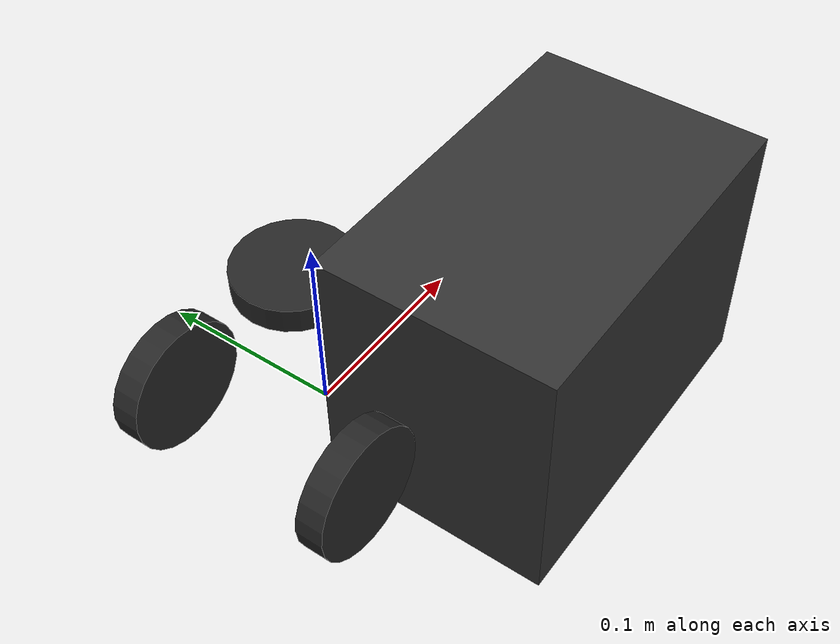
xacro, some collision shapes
<?xml version="1.0"?>
<!-- Basic Differential drive mobile base -->
<robot xmlns:xacro="http://www.ros.org/wiki/xacro" name="diffdrive_robot">
  <!-- Parameters -->
  <xacro:arg name="prefix" default="" />
  <xacro:arg name="use_mock_hardware" default="false" />

  <!-- Import robot description -->
  <xacro:include filename="$(find cmeresearch_description)/urdf/cmexb/cmexb_description.urdf.xacro" />

  <!-- Robot constants and properties -->

  <xacro:include filename="$(find cmeresearch_description)/urdf/cmexb/cmexb_properties.urdf.xacro" />

  <!-- Import Rviz colors -->
  <xacro:include filename="$(find cmeresearch_description)/urdf/materials.xacro" />

  <!-- Import ros2_control description -->
  <xacro:include filename="$(find cmeresearch_description)/urdf/cmexb/cmexb_diff.ros2_control.xacro" />

  <!-- Instantiate the robot -->
  <xacro:cmexb prefix="$(arg prefix)" />

  <!-- Add ros2_control -->
  <xacro:cmexb_ros2_control
    name="Cmexb" prefix="$(arg prefix)" use_mock_hardware="$(arg use_mock_hardware)"/>

</robot>

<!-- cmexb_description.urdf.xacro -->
<robot xmlns:xacro="http://www.ros.org/wiki/xacro">
 <xacro:macro name="cmexb" params="prefix">
    <!-- Base Link -->
  <link name="${prefix}base_link">

  </link>

  <joint name="${prefix}base_link_joint" type="fixed">
    <origin xyz="0 0 ${wheel_radius/2}" rpy="0 0 0" />
    <parent link="${prefix}base_link"/>
    <child link="${prefix}chassis_link" />
  </joint>

  <link name="${prefix}chassis_link">
    <visual>
      <origin xyz="${chassis_length/2} ${-chassis_width/2} 0" rpy="0 0 ${PI/2}" />
      <geometry>
        <mesh filename="package://cmeresearch_description/meshes/cmexb/cmexb-base.stl" scale="0.001 0.001 0.001"/>
      </geometry>
      <material name="dark_grey" />
    </visual>
    <collision>
      <origin xyz="${chassis_length/2} ${-chassis_width/2} 0"/>
      <geometry>
        <box size="${chassis_length} ${chassis_width} ${chassis_height}"/>
      </geometry>
    </collision>
    <inertial>
      <origin xyz="0.012  0.002 0.067" rpy="0 0 0"/>
      <mass value="16.523"/>
      <inertia
        ixx="0.3136" ixy="-0.0008" ixz="0.0164"
        iyy="0.3922" iyz="-0.0009"
        izz="0.4485"/>
      </inertial>
  </link>

   <!-- front left wheel Link -->

   <link name="${prefix}front_left_wheel">
     <collision>
       <origin xyz="0 0 0" rpy="0 0 0"/>
       <geometry>
         <cylinder length="${wheel_width}" radius="${wheel_radius}"/>
       </geometry>
     </collision>

     <visual>
       <origin xyz="0 0 0" rpy="0 0 0"/>
       <geometry>
         <cylinder length="${wheel_width}" radius="${wheel_radius}"/>
       </geometry>
       <material name="black"/>
     </visual>

     <inertial>
       <origin xyz="0 0 0" rpy="0 0 0"/>
       <mass value="${wheel_mass}"/>
       <inertia
               ixx="${wheel_mass / 12.0 * (3*wheel_radius*wheel_radius + wheel_width*wheel_width)}" ixy="0.0" ixz="0.0"
               iyy="${wheel_mass / 12.0 * (3*wheel_radius*wheel_radius + wheel_width*wheel_width)}" iyz="0.0"
               izz="${wheel_mass / 2.0 * wheel_radius*wheel_radius}"/>
     </inertial>
   </link>

    <!-- Front left wheel -->

  <joint name="${prefix}front_left_wheel_joint" type="continuous">
    <parent link="${prefix}base_link"/>
    <child link="${prefix}front_left_wheel"/>
    <origin xyz="${wheelbase/2} ${track/2} ${wheel_radius/2}" rpy="0 0 0"/>
    <axis xyz="0 1 0"/>
    <dynamics damping="0.2"/>
    <limit effort="100" velocity="15.0"/>
  </joint>

  <!-- Transmission for FRONT LEFT WHEEL -->
  <transmission name="${prefix}front_left_wheel_trans">
   <type>transmission_interface/SimpleTransmission</type>
   <joint name="${prefix}front_left_wheel_joint">
     <hardwareInterface>hardware_interface/VelocityJointInterface</hardwareInterface>
   </joint>
   <actuator name="${prefix}front_left_motor">
     <hardwareInterface>hardware_interface/VelocityJointInterface</hardwareInterface>
     <mechanicalReduction>${gear_ratio}</mechanicalReduction>
   </actuator>
</transmission>

  <!-- Front right wheel -->

  <joint name="${prefix}front_right_wheel_joint" type="continuous">
    <parent link="${prefix}base_link"/>
    <child link="${prefix}front_right_wheel"/>
    <origin xyz="${wheelbase/2} ${-track/2} ${wheel_radius/2}" rpy="0 0 0"/>
    <axis xyz="0 1 0"/>
    <dynamics damping="0.2"/>
    <limit effort="100" velocity="15.0"/>
  </joint>

  <!-- Transmission for FRONT RIGHT WHEEL -->
  <transmission name="${prefix}front_right_wheel_trans">
   <type>transmission_interface/SimpleTransmission</type>
   <joint name="${prefix}front_right_wheel_joint">
     <hardwareInterface>hardware_interface/VelocityJointInterface</hardwareInterface>
   </joint>
   <actuator name="${prefix}front_right_motor">
     <hardwareInterface>hardware_interface/VelocityJointInterface</hardwareInterface>
     <mechanicalReduction>${gear_ratio}</mechanicalReduction>
   </actuator>
  </transmission>

  <!-- front right wheel Link -->

  <link name="${prefix}front_right_wheel">
    <collision>
      <origin xyz="0 0 0" rpy="${PI/2} 0 0"/>
      <geometry>
        <cylinder length="${wheel_width}" radius="${wheel_radius}"/>
      </geometry>
    </collision>

    <visual>
      <origin xyz="0 0 0" rpy="${PI/2} 0 0"/>
      <geometry>
        <cylinder length="${wheel_width}" radius="${wheel_radius}"/>
      </geometry>
      <material name="black"/>
    </visual>

    <inertial>
      <origin xyz="0 0 0" rpy="${PI/2} 0 0"/>
      <mass value="${wheel_mass}"/>
      <inertia
              ixx="${wheel_mass / 12.0 * (3*wheel_radius*wheel_radius + wheel_width*wheel_width)}" ixy="0.0" ixz="0.0"
              iyy="${wheel_mass / 12.0 * (3*wheel_radius*wheel_radius + wheel_width*wheel_width)}" iyz="0.0"
              izz="${wheel_mass / 2.0 * wheel_radius*wheel_radius}"/>
    </inertial>
  </link>

  <!-- rear left wheel -->

  <joint name="${prefix}rear_left_wheel_joint" type="continuous">
    <parent link="${prefix}base_link"/>
    <child link="${prefix}rear_left_wheel"/>
    <origin xyz="${-wheelbase/2} ${track/2} ${wheel_radius/2}" rpy="0 0 0"/>
    <axis xyz="0 1 0"/>
    <dynamics damping="0.2"/>
    <limit effort="100" velocity="15.0"/>
  </joint>

   <!-- Transmission for REAR LEFT WHEEL -->
   <transmission name="${prefix}rear_left_wheel_trans">
     <type>transmission_interface/SimpleTransmission</type>
     <joint name="${prefix}rear_left_wheel_joint">
       <hardwareInterface>hardware_interface/VelocityJointInterface</hardwareInterface>
     </joint>
     <actuator name="${prefix}rear_left_motor">
       <hardwareInterface>hardware_interface/VelocityJointInterface</hardwareInterface>
       <mechanicalReduction>${gear_ratio}</mechanicalReduction>
     </actuator>
   </transmission>

  <!-- rear left wheel Link -->

  <link name="${prefix}rear_left_wheel">
    <collision>
      <origin xyz="0 0 0" rpy="${PI/2} 0 0"/>
      <geometry>
        <cylinder length="${wheel_width}" radius="${wheel_radius}"/>
      </geometry>
    </collision>

    <visual>
      <origin xyz="0 0 0" rpy="${PI/2} 0 0"/>
      <geometry>
        <cylinder length="${wheel_width}" radius="${wheel_radius}"/>
      </geometry>
      <material name="black"/>
    </visual>

    <inertial>
      <origin xyz="0 0 0" rpy="${PI/2} 0 0"/>
      <mass value="${wheel_mass}"/>
      <inertia
              ixx="${wheel_mass / 12.0 * (3*wheel_radius*wheel_radius + wheel_width*wheel_width)}" ixy="0.0" ixz="0.0"
              iyy="${wheel_mass / 12.0 * (3*wheel_radius*wheel_radius + wheel_width*wheel_width)}" iyz="0.0"
              izz="${wheel_mass / 2.0 * wheel_radius*wheel_radius}"/>
    </inertial>
  </link>

  <!-- rear right wheel -->

  <joint name="${prefix}rear_right_wheel_joint" type="continuous">
    <parent link="${prefix}base_link"/>
    <child link="${prefix}rear_right_wheel"/>
    <origin xyz="${-wheelbase/2} ${-track/2} ${wheel_radius/2}" rpy="0 0 0"/>
    <axis xyz="0 1 0"/>
    <dynamics damping="0.2"/>
    <limit effort="100" velocity="15.0"/>
  </joint>

   <!-- Transmission for REAR RIGHT WHEEL -->
   <transmission name="${prefix}rear_right_wheel_trans">
     <type>transmission_interface/SimpleTransmission</type>
     <joint name="${prefix}rear_right_wheel_joint">
       <hardwareInterface>hardware_interface/VelocityJointInterface</hardwareInterface>
     </joint>
     <actuator name="${prefix}rear_right_motor">
       <hardwareInterface>hardware_interface/VelocityJointInterface</hardwareInterface>
       <mechanicalReduction>${gear_ratio}</mechanicalReduction>
     </actuator>
   </transmission>

  <!-- rear right wheel Link -->

  <link name="${prefix}rear_right_wheel">
    <collision>
      <origin xyz="0 0 0" rpy="${PI/2} 0 0"/>
      <geometry>
        <cylinder length="${wheel_width}" radius="${wheel_radius}"/>
      </geometry>
    </collision>

    <visual>
      <origin xyz="0 0 0" rpy="${PI/2} 0 0"/>
      <geometry>
        <cylinder length="${wheel_width}" radius="${wheel_radius}"/>
      </geometry>
      <material name="black"/>
    </visual>

    <inertial>
      <origin xyz="0 0 0" rpy="${PI/2} 0 0"/>
      <mass value="${wheel_mass}"/>
      <inertia
              ixx="${wheel_mass / 12.0 * (3*wheel_radius*wheel_radius + wheel_width*wheel_width)}" ixy="0.0" ixz="0.0"
              iyy="${wheel_mass / 12.0 * (3*wheel_radius*wheel_radius + wheel_width*wheel_width)}" iyz="0.0"
              izz="${wheel_mass / 2.0 * wheel_radius*wheel_radius}"/>
    </inertial>
  </link>

 </xacro:macro>
</robot>

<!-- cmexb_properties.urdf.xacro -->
<robot xmlns:xacro="http://www.ros.org/wiki/xacro">

  <xacro:property name="PI" value="3.1415926535897931" />

  <!-- wheelbase = distance between wheel axis (x-direction)
       example: distance between wheel_front_right and wheel_rear_right-->
  <xacro:property name="wheelbase" value="0.090" />
  <!-- track = distance between wheels (y-direction)
       example: distance between wheel_front_right and wheel_front_left -->
  <xacro:property name="track" value="0.112" />
  <!-- vertical offset means height -->
  <xacro:property name="wheel_vertical_offset" value="0.044" />
  <xacro:property name="footprint_vertical_offset" value="0.025" />

  <xacro:property name="wheel_radius" value="0.035" />
  <xacro:property name="wheel_width" value="0.015" />
  <xacro:property name="gear_ratio" value="5.0"/>

  <xacro:property name="chassis_length" value="0.200" />
  <xacro:property name="chassis_width" value="0.130" />
  <xacro:property name="chassis_height" value="0.150" />
  <xacro:property name="chassis_mass" value="0.3" />

  <xacro:property name="dummy_inertia" value="1e-09"/>

  <xacro:property name="mount_spacing" value="0.120" />

  <xacro:property name="z_offset" value="-${chassis_height/2}" /> <!-- Space btw top of beam and the each joint -->
  <xacro:property name="wheel_mass" value="0.1"/>

</robot>

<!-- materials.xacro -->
<robot>
  <material name="dark_grey"><color rgba="0.2 0.2 0.2 1.0" /></material>
  <material name="light_grey"><color rgba="0.4 0.4 0.4 1.0" /></material>
  <material name="yellow"><color rgba="0.8 0.8 0.0 1.0" /></material>
  <material name="black"><color rgba="0.15 0.15 0.15 1.0" /></material>
  <material name="green"><color rgba="0.25 0.75 0.25 1.0" /></material>
  <material name="orange"><color rgba="0.92 0.33 0.02 1.0" /></material>
  <material name="white"><color rgba="1.0 1.0 1.0 1.0"/></material>
</robot>
